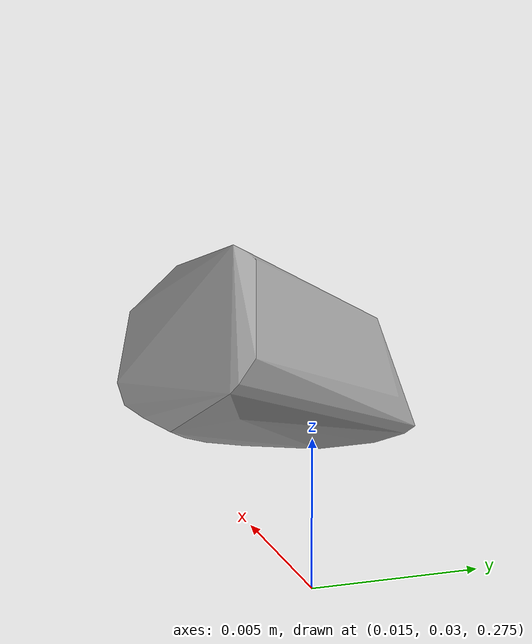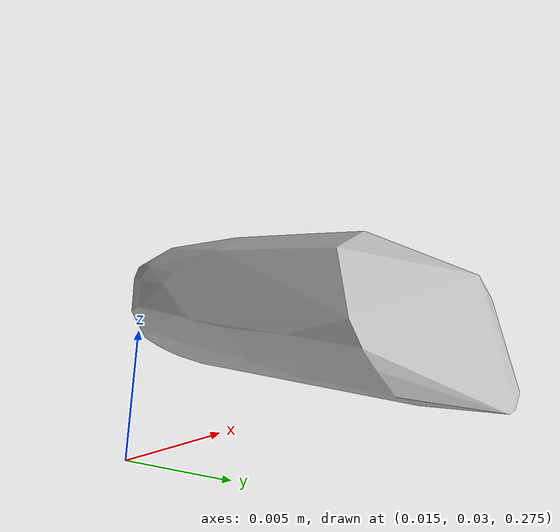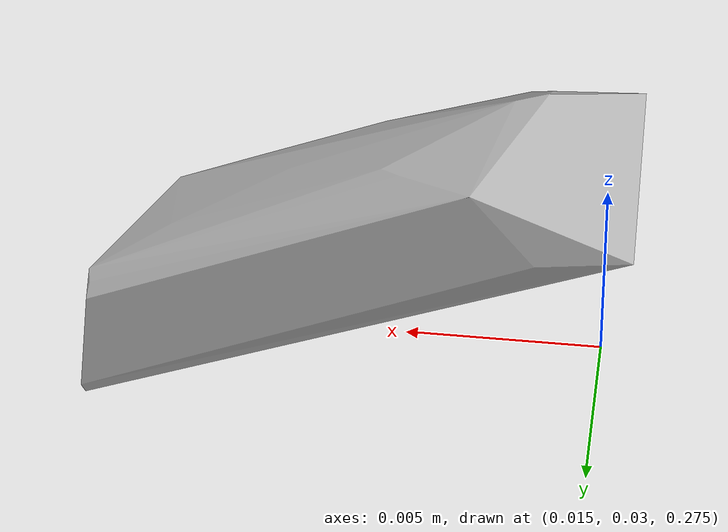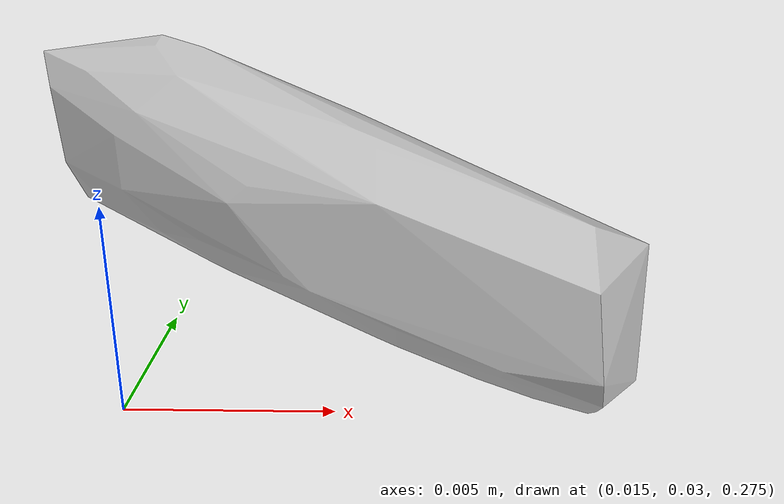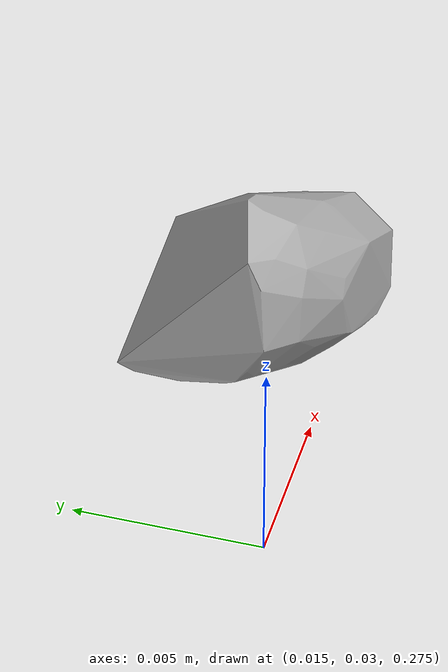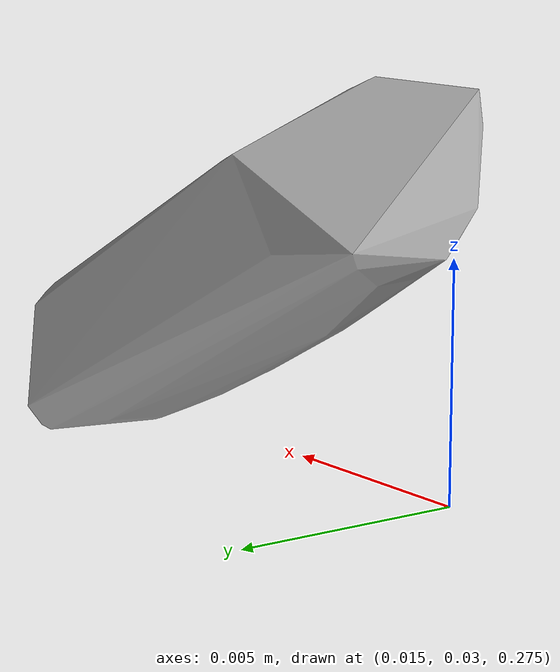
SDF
<?xml version="1.0"?>
<sdf version="1.7">
  <model name="vascular_partexport037">
    <link name="vascular_partexport037_body">
      <visual name="vascular_partexport037_visual">
        <geometry>
          <mesh>
            <uri>vascular_partexport037.obj</uri>
          </mesh>
        </geometry>
      </visual>
      <collision name="vascular_partexport037_collision">
        <geometry>
          <mesh>
            <uri>vascular_partexport037.obj</uri>
          </mesh>
        </geometry>
      </collision>
    </link>
    <frame name="vascular_partexport037_center">
      <pose relative_to="vascular_partexport037_body">0 0 0 0 0 0</pose>
    </frame>
  </model>
</sdf>
